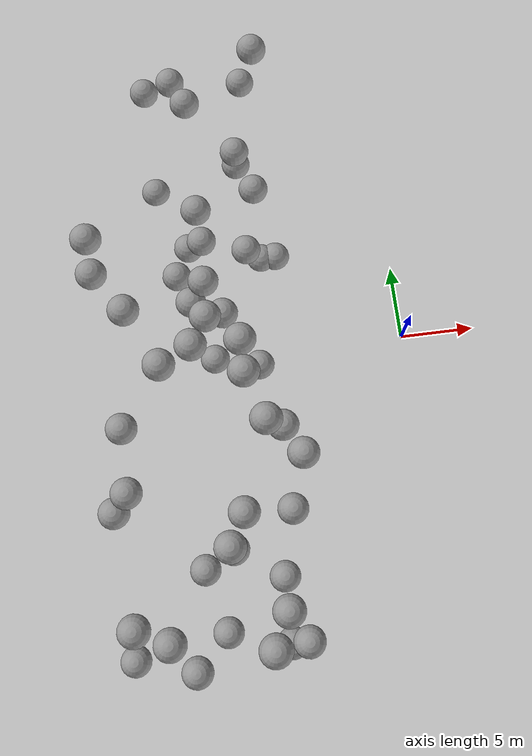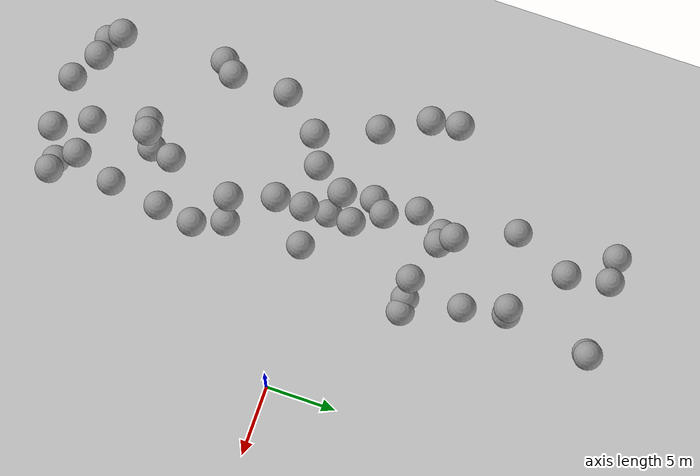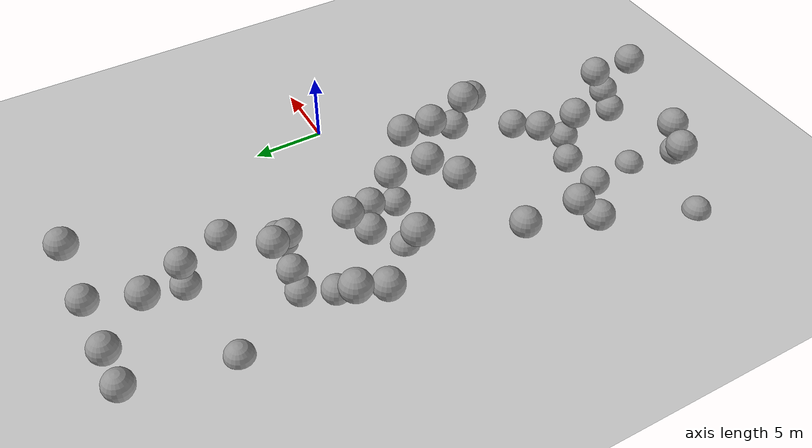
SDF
<sdf version="1.7">
 <world name="default">
  <model name="ground_plane">
   <static>1</static>
   <link name="link">
    <collision name="collision">
     <geometry><plane><normal>0 0 1</normal><size>100 100</size></plane></geometry>
     <surface>
      <contact><collide_bitmask>65535</collide_bitmask></contact>
      <friction><ode><mu>100</mu><mu2>50</mu2></ode></friction>
     </surface>
    </collision>
    <visual name="visual">
     <cast_shadows>0</cast_shadows>
     <geometry><plane><normal>0 0 1</normal><size>100 100</size></plane></geometry>
     <material>
      <script><uri>file://media/materials/scripts/gazebo.material</uri><name>Gazebo/Grey</name></script>
     </material>
    </visual>
   </link>
  </model>
  <model name="sphere_1">
   <static>1</static>
   <pose>-19 -17 6 0 0 0</pose>
   <link name="link">
    <inertial>
     <mass>418.87902047863906</mass>
     <inertia>
      <ixx>167.55160819145564</ixx>
      <iyy>167.55160819145564</iyy>
      <izz>167.55160819145564</izz>
      <ixy>0</ixy>
      <ixz>0</ixz>
      <iyz>0</iyz>
     </inertia>
    </inertial>
    <collision name="collision"><geometry><sphere><radius>1.0</radius></sphere></geometry></collision>
    <visual name="visual">
     <geometry><sphere><radius>1.0</radius></sphere></geometry>
     <material>
      <script><uri>file://media/materials/scripts/gazebo.material</uri><name>Gazebo/Grey</name></script>
     </material>
    </visual>
   </link>
  </model>
  <model name="sphere_2">
   <static>1</static>
   <pose>-15 -14 1 0 0 0</pose>
   <link name="link">
    <inertial>
     <mass>418.87902047863906</mass>
     <inertia>
      <ixx>167.55160819145564</ixx>
      <iyy>167.55160819145564</iyy>
      <izz>167.55160819145564</izz>
      <ixy>0</ixy>
      <ixz>0</ixz>
      <iyz>0</iyz>
     </inertia>
    </inertial>
    <collision name="collision"><geometry><sphere><radius>1.0</radius></sphere></geometry></collision>
    <visual name="visual">
     <geometry><sphere><radius>1.0</radius></sphere></geometry>
     <material>
      <script><uri>file://media/materials/scripts/gazebo.material</uri><name>Gazebo/Grey</name></script>
     </material>
    </visual>
   </link>
  </model>
  <model name="sphere_6">
   <static>1</static>
   <pose>-10 -19 2 0 0 0</pose>
   <link name="link">
    <inertial>
     <mass>418.87902047863906</mass>
     <inertia>
      <ixx>167.55160819145564</ixx>
      <iyy>167.55160819145564</iyy>
      <izz>167.55160819145564</izz>
      <ixy>0</ixy>
      <ixz>0</ixz>
      <iyz>0</iyz>
     </inertia>
    </inertial>
    <collision name="collision"><geometry><sphere><radius>1.0</radius></sphere></geometry></collision>
    <visual name="visual">
     <geometry><sphere><radius>1.0</radius></sphere></geometry>
     <material>
      <script><uri>file://media/materials/scripts/gazebo.material</uri><name>Gazebo/Grey</name></script>
     </material>
    </visual>
   </link>
  </model>
  <model name="sphere_10">
   <static>1</static>
   <pose>-10 14 3 0 0 0</pose>
   <link name="link">
    <inertial>
     <mass>418.87902047863906</mass>
     <inertia>
      <ixx>167.55160819145564</ixx>
      <iyy>167.55160819145564</iyy>
      <izz>167.55160819145564</izz>
      <ixy>0</ixy>
      <ixz>0</ixz>
      <iyz>0</iyz>
     </inertia>
    </inertial>
    <collision name="collision"><geometry><sphere><radius>1.0</radius></sphere></geometry></collision>
    <visual name="visual">
     <geometry><sphere><radius>1.0</radius></sphere></geometry>
     <material>
      <script><uri>file://media/materials/scripts/gazebo.material</uri><name>Gazebo/Grey</name></script>
     </material>
    </visual>
   </link>
  </model>
  <model name="sphere_11">
   <static>1</static>
   <pose>-16 20 2 0 0 0</pose>
   <link name="link">
    <inertial>
     <mass>418.87902047863906</mass>
     <inertia>
      <ixx>167.55160819145564</ixx>
      <iyy>167.55160819145564</iyy>
      <izz>167.55160819145564</izz>
      <ixy>0</ixy>
      <ixz>0</ixz>
      <iyz>0</iyz>
     </inertia>
    </inertial>
    <collision name="collision"><geometry><sphere><radius>1.0</radius></sphere></geometry></collision>
    <visual name="visual">
     <geometry><sphere><radius>1.0</radius></sphere></geometry>
     <material>
      <script><uri>file://media/materials/scripts/gazebo.material</uri><name>Gazebo/Grey</name></script>
     </material>
    </visual>
   </link>
  </model>
  <model name="sphere_24">
   <static>1</static>
   <pose>-9 -6 5 0 0 0</pose>
   <link name="link">
    <inertial>
     <mass>418.87902047863906</mass>
     <inertia>
      <ixx>167.55160819145564</ixx>
      <iyy>167.55160819145564</iyy>
      <izz>167.55160819145564</izz>
      <ixy>0</ixy>
      <ixz>0</ixz>
      <iyz>0</iyz>
     </inertia>
    </inertial>
    <collision name="collision"><geometry><sphere><radius>1.0</radius></sphere></geometry></collision>
    <visual name="visual">
     <geometry><sphere><radius>1.0</radius></sphere></geometry>
     <material>
      <script><uri>file://media/materials/scripts/gazebo.material</uri><name>Gazebo/Grey</name></script>
     </material>
    </visual>
   </link>
  </model>
  <model name="sphere_25">
   <static>1</static>
   <pose>-10 -1 1 0 0 0</pose>
   <link name="link">
    <inertial>
     <mass>418.87902047863906</mass>
     <inertia>
      <ixx>167.55160819145564</ixx>
      <iyy>167.55160819145564</iyy>
      <izz>167.55160819145564</izz>
      <ixy>0</ixy>
      <ixz>0</ixz>
      <iyz>0</iyz>
     </inertia>
    </inertial>
    <collision name="collision"><geometry><sphere><radius>1.0</radius></sphere></geometry></collision>
    <visual name="visual">
     <geometry><sphere><radius>1.0</radius></sphere></geometry>
     <material>
      <script><uri>file://media/materials/scripts/gazebo.material</uri><name>Gazebo/Grey</name></script>
     </material>
    </visual>
   </link>
  </model>
  <model name="sphere_27">
   <static>1</static>
   <pose>-19 -9 5 0 0 0</pose>
   <link name="link">
    <inertial>
     <mass>418.87902047863906</mass>
     <inertia>
      <ixx>167.55160819145564</ixx>
      <iyy>167.55160819145564</iyy>
      <izz>167.55160819145564</izz>
      <ixy>0</ixy>
      <ixz>0</ixz>
      <iyz>0</iyz>
     </inertia>
    </inertial>
    <collision name="collision"><geometry><sphere><radius>1.0</radius></sphere></geometry></collision>
    <visual name="visual">
     <geometry><sphere><radius>1.0</radius></sphere></geometry>
     <material>
      <script><uri>file://media/materials/scripts/gazebo.material</uri><name>Gazebo/Grey</name></script>
     </material>
    </visual>
   </link>
  </model>
  <model name="sphere_28">
   <static>1</static>
   <pose>-13 8 2 0 0 0</pose>
   <link name="link">
    <inertial>
     <mass>418.87902047863906</mass>
     <inertia>
      <ixx>167.55160819145564</ixx>
      <iyy>167.55160819145564</iyy>
      <izz>167.55160819145564</izz>
      <ixy>0</ixy>
      <ixz>0</ixz>
      <iyz>0</iyz>
     </inertia>
    </inertial>
    <collision name="collision"><geometry><sphere><radius>1.0</radius></sphere></geometry></collision>
    <visual name="visual">
     <geometry><sphere><radius>1.0</radius></sphere></geometry>
     <material>
      <script><uri>file://media/materials/scripts/gazebo.material</uri><name>Gazebo/Grey</name></script>
     </material>
    </visual>
   </link>
  </model>
  <model name="sphere_35">
   <static>1</static>
   <pose>-11 -3 8 0 0 0</pose>
   <link name="link">
    <inertial>
     <mass>418.87902047863906</mass>
     <inertia>
      <ixx>167.55160819145564</ixx>
      <iyy>167.55160819145564</iyy>
      <izz>167.55160819145564</izz>
      <ixy>0</ixy>
      <ixz>0</ixz>
      <iyz>0</iyz>
     </inertia>
    </inertial>
    <collision name="collision"><geometry><sphere><radius>1.0</radius></sphere></geometry></collision>
    <visual name="visual">
     <geometry><sphere><radius>1.0</radius></sphere></geometry>
     <material>
      <script><uri>file://media/materials/scripts/gazebo.material</uri><name>Gazebo/Grey</name></script>
     </material>
    </visual>
   </link>
  </model>
  <model name="sphere_36">
   <static>1</static>
   <pose>-20 -10 4 0 0 0</pose>
   <link name="link">
    <inertial>
     <mass>418.87902047863906</mass>
     <inertia>
      <ixx>167.55160819145564</ixx>
      <iyy>167.55160819145564</iyy>
      <izz>167.55160819145564</izz>
      <ixy>0</ixy>
      <ixz>0</ixz>
      <iyz>0</iyz>
     </inertia>
    </inertial>
    <collision name="collision"><geometry><sphere><radius>1.0</radius></sphere></geometry></collision>
    <visual name="visual">
     <geometry><sphere><radius>1.0</radius></sphere></geometry>
     <material>
      <script><uri>file://media/materials/scripts/gazebo.material</uri><name>Gazebo/Grey</name></script>
     </material>
    </visual>
   </link>
  </model>
  <model name="sphere_37">
   <static>1</static>
   <pose>-11 -19 7 0 0 0</pose>
   <link name="link">
    <inertial>
     <mass>418.87902047863906</mass>
     <inertia>
      <ixx>167.55160819145564</ixx>
      <iyy>167.55160819145564</iyy>
      <izz>167.55160819145564</izz>
      <ixy>0</ixy>
      <ixz>0</ixz>
      <iyz>0</iyz>
     </inertia>
    </inertial>
    <collision name="collision"><geometry><sphere><radius>1.0</radius></sphere></geometry></collision>
    <visual name="visual">
     <geometry><sphere><radius>1.0</radius></sphere></geometry>
     <material>
      <script><uri>file://media/materials/scripts/gazebo.material</uri><name>Gazebo/Grey</name></script>
     </material>
    </visual>
   </link>
  </model>
  <model name="sphere_40">
   <static>1</static>
   <pose>-20 -19 0 0 0 0</pose>
   <link name="link">
    <inertial>
     <mass>418.87902047863906</mass>
     <inertia>
      <ixx>167.55160819145564</ixx>
      <iyy>167.55160819145564</iyy>
      <izz>167.55160819145564</izz>
      <ixy>0</ixy>
      <ixz>0</ixz>
      <iyz>0</iyz>
     </inertia>
    </inertial>
    <collision name="collision"><geometry><sphere><radius>1.0</radius></sphere></geometry></collision>
    <visual name="visual">
     <geometry><sphere><radius>1.0</radius></sphere></geometry>
     <material>
      <script><uri>file://media/materials/scripts/gazebo.material</uri><name>Gazebo/Grey</name></script>
     </material>
    </visual>
   </link>
  </model>
  <model name="sphere_44">
   <static>1</static>
   <pose>-20 5 6 0 0 0</pose>
   <link name="link">
    <inertial>
     <mass>418.87902047863906</mass>
     <inertia>
      <ixx>167.55160819145564</ixx>
      <iyy>167.55160819145564</iyy>
      <izz>167.55160819145564</izz>
      <ixy>0</ixy>
      <ixz>0</ixz>
      <iyz>0</iyz>
     </inertia>
    </inertial>
    <collision name="collision"><geometry><sphere><radius>1.0</radius></sphere></geometry></collision>
    <visual name="visual">
     <geometry><sphere><radius>1.0</radius></sphere></geometry>
     <material>
      <script><uri>file://media/materials/scripts/gazebo.material</uri><name>Gazebo/Grey</name></script>
     </material>
    </visual>
   </link>
  </model>
  <model name="sphere_46">
   <static>1</static>
   <pose>-20 7 7 0 0 0</pose>
   <link name="link">
    <inertial>
     <mass>418.87902047863906</mass>
     <inertia>
      <ixx>167.55160819145564</ixx>
      <iyy>167.55160819145564</iyy>
      <izz>167.55160819145564</izz>
      <ixy>0</ixy>
      <ixz>0</ixz>
      <iyz>0</iyz>
     </inertia>
    </inertial>
    <collision name="collision"><geometry><sphere><radius>1.0</radius></sphere></geometry></collision>
    <visual name="visual">
     <geometry><sphere><radius>1.0</radius></sphere></geometry>
     <material>
      <script><uri>file://media/materials/scripts/gazebo.material</uri><name>Gazebo/Grey</name></script>
     </material>
    </visual>
   </link>
  </model>
  <model name="sphere_48">
   <static>1</static>
   <pose>-13 -13 6 0 0 0</pose>
   <link name="link">
    <inertial>
     <mass>418.87902047863906</mass>
     <inertia>
      <ixx>167.55160819145564</ixx>
      <iyy>167.55160819145564</iyy>
      <izz>167.55160819145564</izz>
      <ixy>0</ixy>
      <ixz>0</ixz>
      <iyz>0</iyz>
     </inertia>
    </inertial>
    <collision name="collision"><geometry><sphere><radius>1.0</radius></sphere></geometry></collision>
    <visual name="visual">
     <geometry><sphere><radius>1.0</radius></sphere></geometry>
     <material>
      <script><uri>file://media/materials/scripts/gazebo.material</uri><name>Gazebo/Grey</name></script>
     </material>
    </visual>
   </link>
  </model>
  <model name="sphere_49">
   <static>1</static>
   <pose>-11 -1 8 0 0 0</pose>
   <link name="link">
    <inertial>
     <mass>418.87902047863906</mass>
     <inertia>
      <ixx>167.55160819145564</ixx>
      <iyy>167.55160819145564</iyy>
      <izz>167.55160819145564</izz>
      <ixy>0</ixy>
      <ixz>0</ixz>
      <iyz>0</iyz>
     </inertia>
    </inertial>
    <collision name="collision"><geometry><sphere><radius>1.0</radius></sphere></geometry></collision>
    <visual name="visual">
     <geometry><sphere><radius>1.0</radius></sphere></geometry>
     <material>
      <script><uri>file://media/materials/scripts/gazebo.material</uri><name>Gazebo/Grey</name></script>
     </material>
    </visual>
   </link>
  </model>
  <model name="sphere_51">
   <static>1</static>
   <pose>-9 -11 3 0 0 0</pose>
   <link name="link">
    <inertial>
     <mass>418.87902047863906</mass>
     <inertia>
      <ixx>167.55160819145564</ixx>
      <iyy>167.55160819145564</iyy>
      <izz>167.55160819145564</izz>
      <ixy>0</ixy>
      <ixz>0</ixz>
      <iyz>0</iyz>
     </inertia>
    </inertial>
    <collision name="collision"><geometry><sphere><radius>1.0</radius></sphere></geometry></collision>
    <visual name="visual">
     <geometry><sphere><radius>1.0</radius></sphere></geometry>
     <material>
      <script><uri>file://media/materials/scripts/gazebo.material</uri><name>Gazebo/Grey</name></script>
     </material>
    </visual>
   </link>
  </model>
  <model name="sphere_54">
   <static>1</static>
   <pose>-13 1 7 0 0 0</pose>
   <link name="link">
    <inertial>
     <mass>418.87902047863906</mass>
     <inertia>
      <ixx>167.55160819145564</ixx>
      <iyy>167.55160819145564</iyy>
      <izz>167.55160819145564</izz>
      <ixy>0</ixy>
      <ixz>0</ixz>
      <iyz>0</iyz>
     </inertia>
    </inertial>
    <collision name="collision"><geometry><sphere><radius>1.0</radius></sphere></geometry></collision>
    <visual name="visual">
     <geometry><sphere><radius>1.0</radius></sphere></geometry>
     <material>
      <script><uri>file://media/materials/scripts/gazebo.material</uri><name>Gazebo/Grey</name></script>
     </material>
    </visual>
   </link>
  </model>
  <model name="sphere_56">
   <static>1</static>
   <pose>-16 13 0 0 0 0</pose>
   <link name="link">
    <inertial>
     <mass>418.87902047863906</mass>
     <inertia>
      <ixx>167.55160819145564</ixx>
      <iyy>167.55160819145564</iyy>
      <izz>167.55160819145564</izz>
      <ixy>0</ixy>
      <ixz>0</ixz>
      <iyz>0</iyz>
     </inertia>
    </inertial>
    <collision name="collision"><geometry><sphere><radius>1.0</radius></sphere></geometry></collision>
    <visual name="visual">
     <geometry><sphere><radius>1.0</radius></sphere></geometry>
     <material>
      <script><uri>file://media/materials/scripts/gazebo.material</uri><name>Gazebo/Grey</name></script>
     </material>
    </visual>
   </link>
  </model>
  <model name="sphere_59">
   <static>1</static>
   <pose>-14 -18 0 0 0 0</pose>
   <link name="link">
    <inertial>
     <mass>418.87902047863906</mass>
     <inertia>
      <ixx>167.55160819145564</ixx>
      <iyy>167.55160819145564</iyy>
      <izz>167.55160819145564</izz>
      <ixy>0</ixy>
      <ixz>0</ixz>
      <iyz>0</iyz>
     </inertia>
    </inertial>
    <collision name="collision"><geometry><sphere><radius>1.0</radius></sphere></geometry></collision>
    <visual name="visual">
     <geometry><sphere><radius>1.0</radius></sphere></geometry>
     <material>
      <script><uri>file://media/materials/scripts/gazebo.material</uri><name>Gazebo/Grey</name></script>
     </material>
    </visual>
   </link>
  </model>
  <model name="sphere_65">
   <static>1</static>
   <pose>-9 -19 3 0 0 0</pose>
   <link name="link">
    <inertial>
     <mass>418.87902047863906</mass>
     <inertia>
      <ixx>167.55160819145564</ixx>
      <iyy>167.55160819145564</iyy>
      <izz>167.55160819145564</izz>
      <ixy>0</ixy>
      <ixz>0</ixz>
      <iyz>0</iyz>
     </inertia>
    </inertial>
    <collision name="collision"><geometry><sphere><radius>1.0</radius></sphere></geometry></collision>
    <visual name="visual">
     <geometry><sphere><radius>1.0</radius></sphere></geometry>
     <material>
      <script><uri>file://media/materials/scripts/gazebo.material</uri><name>Gazebo/Grey</name></script>
     </material>
    </visual>
   </link>
  </model>
  <model name="sphere_67">
   <static>1</static>
   <pose>-10 -15 1 0 0 0</pose>
   <link name="link">
    <inertial>
     <mass>418.87902047863906</mass>
     <inertia>
      <ixx>167.55160819145564</ixx>
      <iyy>167.55160819145564</iyy>
      <izz>167.55160819145564</izz>
      <ixy>0</ixy>
      <ixz>0</ixz>
      <iyz>0</iyz>
     </inertia>
    </inertial>
    <collision name="collision"><geometry><sphere><radius>1.0</radius></sphere></geometry></collision>
    <visual name="visual">
     <geometry><sphere><radius>1.0</radius></sphere></geometry>
     <material>
      <script><uri>file://media/materials/scripts/gazebo.material</uri><name>Gazebo/Grey</name></script>
     </material>
    </visual>
   </link>
  </model>
  <model name="sphere_69">
   <static>1</static>
   <pose>-14 20 3 0 0 0</pose>
   <link name="link">
    <inertial>
     <mass>418.87902047863906</mass>
     <inertia>
      <ixx>167.55160819145564</ixx>
      <iyy>167.55160819145564</iyy>
      <izz>167.55160819145564</izz>
      <ixy>0</ixy>
      <ixz>0</ixz>
      <iyz>0</iyz>
     </inertia>
    </inertial>
    <collision name="collision"><geometry><sphere><radius>1.0</radius></sphere></geometry></collision>
    <visual name="visual">
     <geometry><sphere><radius>1.0</radius></sphere></geometry>
     <material>
      <script><uri>file://media/materials/scripts/gazebo.material</uri><name>Gazebo/Grey</name></script>
     </material>
    </visual>
   </link>
  </model>
  <model name="sphere_82">
   <static>1</static>
   <pose>-13 4 5 0 0 0</pose>
   <link name="link">
    <inertial>
     <mass>418.87902047863906</mass>
     <inertia>
      <ixx>167.55160819145564</ixx>
      <iyy>167.55160819145564</iyy>
      <izz>167.55160819145564</izz>
      <ixy>0</ixy>
      <ixz>0</ixz>
      <iyz>0</iyz>
     </inertia>
    </inertial>
    <collision name="collision"><geometry><sphere><radius>1.0</radius></sphere></geometry></collision>
    <visual name="visual">
     <geometry><sphere><radius>1.0</radius></sphere></geometry>
     <material>
      <script><uri>file://media/materials/scripts/gazebo.material</uri><name>Gazebo/Grey</name></script>
     </material>
    </visual>
   </link>
  </model>
  <model name="sphere_83">
   <static>1</static>
   <pose>-14 8 1 0 0 0</pose>
   <link name="link">
    <inertial>
     <mass>418.87902047863906</mass>
     <inertia>
      <ixx>167.55160819145564</ixx>
      <iyy>167.55160819145564</iyy>
      <izz>167.55160819145564</izz>
      <ixy>0</ixy>
      <ixz>0</ixz>
      <iyz>0</iyz>
     </inertia>
    </inertial>
    <collision name="collision"><geometry><sphere><radius>1.0</radius></sphere></geometry></collision>
    <visual name="visual">
     <geometry><sphere><radius>1.0</radius></sphere></geometry>
     <material>
      <script><uri>file://media/materials/scripts/gazebo.material</uri><name>Gazebo/Grey</name></script>
     </material>
    </visual>
   </link>
  </model>
  <model name="sphere_84">
   <static>1</static>
   <pose>-10 14 1 0 0 0</pose>
   <link name="link">
    <inertial>
     <mass>418.87902047863906</mass>
     <inertia>
      <ixx>167.55160819145564</ixx>
      <iyy>167.55160819145564</iyy>
      <izz>167.55160819145564</izz>
      <ixy>0</ixy>
      <ixz>0</ixz>
      <iyz>0</iyz>
     </inertia>
    </inertial>
    <collision name="collision"><geometry><sphere><radius>1.0</radius></sphere></geometry></collision>
    <visual name="visual">
     <geometry><sphere><radius>1.0</radius></sphere></geometry>
     <material>
      <script><uri>file://media/materials/scripts/gazebo.material</uri><name>Gazebo/Grey</name></script>
     </material>
    </visual>
   </link>
  </model>
  <model name="sphere_85">
   <static>1</static>
   <pose>-10 -17 6 0 0 0</pose>
   <link name="link">
    <inertial>
     <mass>418.87902047863906</mass>
     <inertia>
      <ixx>167.55160819145564</ixx>
      <iyy>167.55160819145564</iyy>
      <izz>167.55160819145564</izz>
      <ixy>0</ixy>
      <ixz>0</ixz>
      <iyz>0</iyz>
     </inertia>
    </inertial>
    <collision name="collision"><geometry><sphere><radius>1.0</radius></sphere></geometry></collision>
    <visual name="visual">
     <geometry><sphere><radius>1.0</radius></sphere></geometry>
     <material>
      <script><uri>file://media/materials/scripts/gazebo.material</uri><name>Gazebo/Grey</name></script>
     </material>
    </visual>
   </link>
  </model>
  <model name="sphere_87">
   <static>1</static>
   <pose>-12 -11 5 0 0 0</pose>
   <link name="link">
    <inertial>
     <mass>418.87902047863906</mass>
     <inertia>
      <ixx>167.55160819145564</ixx>
      <iyy>167.55160819145564</iyy>
      <izz>167.55160819145564</izz>
      <ixy>0</ixy>
      <ixz>0</ixz>
      <iyz>0</iyz>
     </inertia>
    </inertial>
    <collision name="collision"><geometry><sphere><radius>1.0</radius></sphere></geometry></collision>
    <visual name="visual">
     <geometry><sphere><radius>1.0</radius></sphere></geometry>
     <material>
      <script><uri>file://media/materials/scripts/gazebo.material</uri><name>Gazebo/Grey</name></script>
     </material>
    </visual>
   </link>
  </model>
  <model name="sphere_88">
   <static>1</static>
   <pose>-9 20 2 0 0 0</pose>
   <link name="link">
    <inertial>
     <mass>418.87902047863906</mass>
     <inertia>
      <ixx>167.55160819145564</ixx>
      <iyy>167.55160819145564</iyy>
      <izz>167.55160819145564</izz>
      <ixy>0</ixy>
      <ixz>0</ixz>
      <iyz>0</iyz>
     </inertia>
    </inertial>
    <collision name="collision"><geometry><sphere><radius>1.0</radius></sphere></geometry></collision>
    <visual name="visual">
     <geometry><sphere><radius>1.0</radius></sphere></geometry>
     <material>
      <script><uri>file://media/materials/scripts/gazebo.material</uri><name>Gazebo/Grey</name></script>
     </material>
    </visual>
   </link>
  </model>
  <model name="sphere_89">
   <static>1</static>
   <pose>-12 2 4 0 0 0</pose>
   <link name="link">
    <inertial>
     <mass>418.87902047863906</mass>
     <inertia>
      <ixx>167.55160819145564</ixx>
      <iyy>167.55160819145564</iyy>
      <izz>167.55160819145564</izz>
      <ixy>0</ixy>
      <ixz>0</ixz>
      <iyz>0</iyz>
     </inertia>
    </inertial>
    <collision name="collision"><geometry><sphere><radius>1.0</radius></sphere></geometry></collision>
    <visual name="visual">
     <geometry><sphere><radius>1.0</radius></sphere></geometry>
     <material>
      <script><uri>file://media/materials/scripts/gazebo.material</uri><name>Gazebo/Grey</name></script>
     </material>
    </visual>
   </link>
  </model>
  <model name="sphere_90">
   <static>1</static>
   <pose>-9 11 3 0 0 0</pose>
   <link name="link">
    <inertial>
     <mass>418.87902047863906</mass>
     <inertia>
      <ixx>167.55160819145564</ixx>
      <iyy>167.55160819145564</iyy>
      <izz>167.55160819145564</izz>
      <ixy>0</ixy>
      <ixz>0</ixz>
      <iyz>0</iyz>
     </inertia>
    </inertial>
    <collision name="collision"><geometry><sphere><radius>1.0</radius></sphere></geometry></collision>
    <visual name="visual">
     <geometry><sphere><radius>1.0</radius></sphere></geometry>
     <material>
      <script><uri>file://media/materials/scripts/gazebo.material</uri><name>Gazebo/Grey</name></script>
     </material>
    </visual>
   </link>
  </model>
  <model name="sphere_92">
   <static>1</static>
   <pose>-13 9 5 0 0 0</pose>
   <link name="link">
    <inertial>
     <mass>418.87902047863906</mass>
     <inertia>
      <ixx>167.55160819145564</ixx>
      <iyy>167.55160819145564</iyy>
      <izz>167.55160819145564</izz>
      <ixy>0</ixy>
      <ixz>0</ixz>
      <iyz>0</iyz>
     </inertia>
    </inertial>
    <collision name="collision"><geometry><sphere><radius>1.0</radius></sphere></geometry></collision>
    <visual name="visual">
     <geometry><sphere><radius>1.0</radius></sphere></geometry>
     <material>
      <script><uri>file://media/materials/scripts/gazebo.material</uri><name>Gazebo/Grey</name></script>
     </material>
    </visual>
   </link>
  </model>
  <model name="sphere_98">
   <static>1</static>
   <pose>-15 6 1 0 0 0</pose>
   <link name="link">
    <inertial>
     <mass>418.87902047863906</mass>
     <inertia>
      <ixx>167.55160819145564</ixx>
      <iyy>167.55160819145564</iyy>
      <izz>167.55160819145564</izz>
      <ixy>0</ixy>
      <ixz>0</ixz>
      <iyz>0</iyz>
     </inertia>
    </inertial>
    <collision name="collision"><geometry><sphere><radius>1.0</radius></sphere></geometry></collision>
    <visual name="visual">
     <geometry><sphere><radius>1.0</radius></sphere></geometry>
     <material>
      <script><uri>file://media/materials/scripts/gazebo.material</uri><name>Gazebo/Grey</name></script>
     </material>
    </visual>
   </link>
  </model>
  <model name="sphere_101">
   <static>1</static>
   <pose>-14 -1 8 0 0 0</pose>
   <link name="link">
    <inertial>
     <mass>418.87902047863906</mass>
     <inertia>
      <ixx>167.55160819145564</ixx>
      <iyy>167.55160819145564</iyy>
      <izz>167.55160819145564</izz>
      <ixy>0</ixy>
      <ixz>0</ixz>
      <iyz>0</iyz>
     </inertia>
    </inertial>
    <collision name="collision"><geometry><sphere><radius>1.0</radius></sphere></geometry></collision>
    <visual name="visual">
     <geometry><sphere><radius>1.0</radius></sphere></geometry>
     <material>
      <script><uri>file://media/materials/scripts/gazebo.material</uri><name>Gazebo/Grey</name></script>
     </material>
    </visual>
   </link>
  </model>
  <model name="sphere_104">
   <static>1</static>
   <pose>-8 20 6 0 0 0</pose>
   <link name="link">
    <inertial>
     <mass>418.87902047863906</mass>
     <inertia>
      <ixx>167.55160819145564</ixx>
      <iyy>167.55160819145564</iyy>
      <izz>167.55160819145564</izz>
      <ixy>0</ixy>
      <ixz>0</ixz>
      <iyz>0</iyz>
     </inertia>
    </inertial>
    <collision name="collision"><geometry><sphere><radius>1.0</radius></sphere></geometry></collision>
    <visual name="visual">
     <geometry><sphere><radius>1.0</radius></sphere></geometry>
     <material>
      <script><uri>file://media/materials/scripts/gazebo.material</uri><name>Gazebo/Grey</name></script>
     </material>
    </visual>
   </link>
  </model>
  <model name="sphere_106">
   <static>1</static>
   <pose>-19 -5 5 0 0 0</pose>
   <link name="link">
    <inertial>
     <mass>418.87902047863906</mass>
     <inertia>
      <ixx>167.55160819145564</ixx>
      <iyy>167.55160819145564</iyy>
      <izz>167.55160819145564</izz>
      <ixy>0</ixy>
      <ixz>0</ixz>
      <iyz>0</iyz>
     </inertia>
    </inertial>
    <collision name="collision"><geometry><sphere><radius>1.0</radius></sphere></geometry></collision>
    <visual name="visual">
     <geometry><sphere><radius>1.0</radius></sphere></geometry>
     <material>
      <script><uri>file://media/materials/scripts/gazebo.material</uri><name>Gazebo/Grey</name></script>
     </material>
    </visual>
   </link>
  </model>
  <model name="sphere_108">
   <static>1</static>
   <pose>-18 2 7 0 0 0</pose>
   <link name="link">
    <inertial>
     <mass>418.87902047863906</mass>
     <inertia>
      <ixx>167.55160819145564</ixx>
      <iyy>167.55160819145564</iyy>
      <izz>167.55160819145564</izz>
      <ixy>0</ixy>
      <ixz>0</ixz>
      <iyz>0</iyz>
     </inertia>
    </inertial>
    <collision name="collision"><geometry><sphere><radius>1.0</radius></sphere></geometry></collision>
    <visual name="visual">
     <geometry><sphere><radius>1.0</radius></sphere></geometry>
     <material>
      <script><uri>file://media/materials/scripts/gazebo.material</uri><name>Gazebo/Grey</name></script>
     </material>
    </visual>
   </link>
  </model>
  <model name="sphere_115">
   <static>1</static>
   <pose>-16 -2 8 0 0 0</pose>
   <link name="link">
    <inertial>
     <mass>418.87902047863906</mass>
     <inertia>
      <ixx>167.55160819145564</ixx>
      <iyy>167.55160819145564</iyy>
      <izz>167.55160819145564</izz>
      <ixy>0</ixy>
      <ixz>0</ixz>
      <iyz>0</iyz>
     </inertia>
    </inertial>
    <collision name="collision"><geometry><sphere><radius>1.0</radius></sphere></geometry></collision>
    <visual name="visual">
     <geometry><sphere><radius>1.0</radius></sphere></geometry>
     <material>
      <script><uri>file://media/materials/scripts/gazebo.material</uri><name>Gazebo/Grey</name></script>
     </material>
    </visual>
   </link>
  </model>
  <model name="sphere_118">
   <static>1</static>
   <pose>-16 -20 2 0 0 0</pose>
   <link name="link">
    <inertial>
     <mass>418.87902047863906</mass>
     <inertia>
      <ixx>167.55160819145564</ixx>
      <iyy>167.55160819145564</iyy>
      <izz>167.55160819145564</izz>
      <ixy>0</ixy>
      <ixz>0</ixz>
      <iyz>0</iyz>
     </inertia>
    </inertial>
    <collision name="collision"><geometry><sphere><radius>1.0</radius></sphere></geometry></collision>
    <visual name="visual">
     <geometry><sphere><radius>1.0</radius></sphere></geometry>
     <material>
      <script><uri>file://media/materials/scripts/gazebo.material</uri><name>Gazebo/Grey</name></script>
     </material>
    </visual>
   </link>
  </model>
  <model name="sphere_121">
   <static>1</static>
   <pose>-8 -8 6 0 0 0</pose>
   <link name="link">
    <inertial>
     <mass>418.87902047863906</mass>
     <inertia>
      <ixx>167.55160819145564</ixx>
      <iyy>167.55160819145564</iyy>
      <izz>167.55160819145564</izz>
      <ixy>0</ixy>
      <ixz>0</ixz>
      <iyz>0</iyz>
     </inertia>
    </inertial>
    <collision name="collision"><geometry><sphere><radius>1.0</radius></sphere></geometry></collision>
    <visual name="visual">
     <geometry><sphere><radius>1.0</radius></sphere></geometry>
     <material>
      <script><uri>file://media/materials/scripts/gazebo.material</uri><name>Gazebo/Grey</name></script>
     </material>
    </visual>
   </link>
  </model>
  <model name="sphere_122">
   <static>1</static>
   <pose>-13 17 5 0 0 0</pose>
   <link name="link">
    <inertial>
     <mass>418.87902047863906</mass>
     <inertia>
      <ixx>167.55160819145564</ixx>
      <iyy>167.55160819145564</iyy>
      <izz>167.55160819145564</izz>
      <ixy>0</ixy>
      <ixz>0</ixz>
      <iyz>0</iyz>
     </inertia>
    </inertial>
    <collision name="collision"><geometry><sphere><radius>1.0</radius></sphere></geometry></collision>
    <visual name="visual">
     <geometry><sphere><radius>1.0</radius></sphere></geometry>
     <material>
      <script><uri>file://media/materials/scripts/gazebo.material</uri><name>Gazebo/Grey</name></script>
     </material>
    </visual>
   </link>
  </model>
  <model name="sphere_124">
   <static>1</static>
   <pose>-10 7 2 0 0 0</pose>
   <link name="link">
    <inertial>
     <mass>418.87902047863906</mass>
     <inertia>
      <ixx>167.55160819145564</ixx>
      <iyy>167.55160819145564</iyy>
      <izz>167.55160819145564</izz>
      <ixy>0</ixy>
      <ixz>0</ixz>
      <iyz>0</iyz>
     </inertia>
    </inertial>
    <collision name="collision"><geometry><sphere><radius>1.0</radius></sphere></geometry></collision>
    <visual name="visual">
     <geometry><sphere><radius>1.0</radius></sphere></geometry>
     <material>
      <script><uri>file://media/materials/scripts/gazebo.material</uri><name>Gazebo/Grey</name></script>
     </material>
    </visual>
   </link>
  </model>
  <model name="sphere_128">
   <static>1</static>
   <pose>-13 0 0 0 0 0</pose>
   <link name="link">
    <inertial>
     <mass>418.87902047863906</mass>
     <inertia>
      <ixx>167.55160819145564</ixx>
      <iyy>167.55160819145564</iyy>
      <izz>167.55160819145564</izz>
      <ixy>0</ixy>
      <ixz>0</ixz>
      <iyz>0</iyz>
     </inertia>
    </inertial>
    <collision name="collision"><geometry><sphere><radius>1.0</radius></sphere></geometry></collision>
    <visual name="visual">
     <geometry><sphere><radius>1.0</radius></sphere></geometry>
     <material>
      <script><uri>file://media/materials/scripts/gazebo.material</uri><name>Gazebo/Grey</name></script>
     </material>
    </visual>
   </link>
  </model>
  <model name="sphere_129">
   <static>1</static>
   <pose>-17 -18 6 0 0 0</pose>
   <link name="link">
    <inertial>
     <mass>418.87902047863906</mass>
     <inertia>
      <ixx>167.55160819145564</ixx>
      <iyy>167.55160819145564</iyy>
      <izz>167.55160819145564</izz>
      <ixy>0</ixy>
      <ixz>0</ixz>
      <iyz>0</iyz>
     </inertia>
    </inertial>
    <collision name="collision"><geometry><sphere><radius>1.0</radius></sphere></geometry></collision>
    <visual name="visual">
     <geometry><sphere><radius>1.0</radius></sphere></geometry>
     <material>
      <script><uri>file://media/materials/scripts/gazebo.material</uri><name>Gazebo/Grey</name></script>
     </material>
    </visual>
   </link>
  </model>
  <model name="sphere_134">
   <static>1</static>
   <pose>-13 -13 2 0 0 0</pose>
   <link name="link">
    <inertial>
     <mass>418.87902047863906</mass>
     <inertia>
      <ixx>167.55160819145564</ixx>
      <iyy>167.55160819145564</iyy>
      <izz>167.55160819145564</izz>
      <ixy>0</ixy>
      <ixz>0</ixz>
      <iyz>0</iyz>
     </inertia>
    </inertial>
    <collision name="collision"><geometry><sphere><radius>1.0</radius></sphere></geometry></collision>
    <visual name="visual">
     <geometry><sphere><radius>1.0</radius></sphere></geometry>
     <material>
      <script><uri>file://media/materials/scripts/gazebo.material</uri><name>Gazebo/Grey</name></script>
     </material>
    </visual>
   </link>
  </model>
  <model name="sphere_136">
   <static>1</static>
   <pose>-8 7 0 0 0 0</pose>
   <link name="link">
    <inertial>
     <mass>418.87902047863906</mass>
     <inertia>
      <ixx>167.55160819145564</ixx>
      <iyy>167.55160819145564</iyy>
      <izz>167.55160819145564</izz>
      <ixy>0</ixy>
      <ixz>0</ixz>
      <iyz>0</iyz>
     </inertia>
    </inertial>
    <collision name="collision"><geometry><sphere><radius>1.0</radius></sphere></geometry></collision>
    <visual name="visual">
     <geometry><sphere><radius>1.0</radius></sphere></geometry>
     <material>
      <script><uri>file://media/materials/scripts/gazebo.material</uri><name>Gazebo/Grey</name></script>
     </material>
    </visual>
   </link>
  </model>
  <model name="sphere_139">
   <static>1</static>
   <pose>-9 7 0 0 0 0</pose>
   <link name="link">
    <inertial>
     <mass>418.87902047863906</mass>
     <inertia>
      <ixx>167.55160819145564</ixx>
      <iyy>167.55160819145564</iyy>
      <izz>167.55160819145564</izz>
      <ixy>0</ixy>
      <ixz>0</ixz>
      <iyz>0</iyz>
     </inertia>
    </inertial>
    <collision name="collision"><geometry><sphere><radius>1.0</radius></sphere></geometry></collision>
    <visual name="visual">
     <geometry><sphere><radius>1.0</radius></sphere></geometry>
     <material>
      <script><uri>file://media/materials/scripts/gazebo.material</uri><name>Gazebo/Grey</name></script>
     </material>
    </visual>
   </link>
  </model>
  <model name="sphere_143">
   <static>1</static>
   <pose>-14 3 4 0 0 0</pose>
   <link name="link">
    <inertial>
     <mass>418.87902047863906</mass>
     <inertia>
      <ixx>167.55160819145564</ixx>
      <iyy>167.55160819145564</iyy>
      <izz>167.55160819145564</izz>
      <ixy>0</ixy>
      <ixz>0</ixz>
      <iyz>0</iyz>
     </inertia>
    </inertial>
    <collision name="collision"><geometry><sphere><radius>1.0</radius></sphere></geometry></collision>
    <visual name="visual">
     <geometry><sphere><radius>1.0</radius></sphere></geometry>
     <material>
      <script><uri>file://media/materials/scripts/gazebo.material</uri><name>Gazebo/Grey</name></script>
     </material>
    </visual>
   </link>
  </model>
  <model name="sphere_145">
   <static>1</static>
   <pose>-10 -6 8 0 0 0</pose>
   <link name="link">
    <inertial>
     <mass>418.87902047863906</mass>
     <inertia>
      <ixx>167.55160819145564</ixx>
      <iyy>167.55160819145564</iyy>
      <izz>167.55160819145564</izz>
      <ixy>0</ixy>
      <ixz>0</ixz>
      <iyz>0</iyz>
     </inertia>
    </inertial>
    <collision name="collision"><geometry><sphere><radius>1.0</radius></sphere></geometry></collision>
    <visual name="visual">
     <geometry><sphere><radius>1.0</radius></sphere></geometry>
     <material>
      <script><uri>file://media/materials/scripts/gazebo.material</uri><name>Gazebo/Grey</name></script>
     </material>
    </visual>
   </link>
  </model>
 </world>
</sdf>
